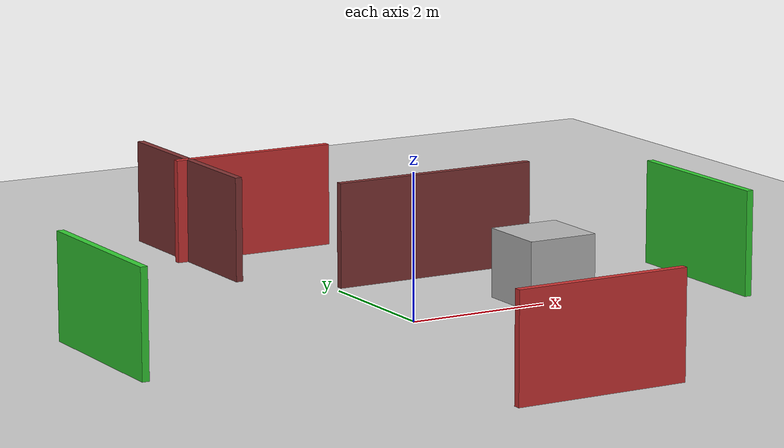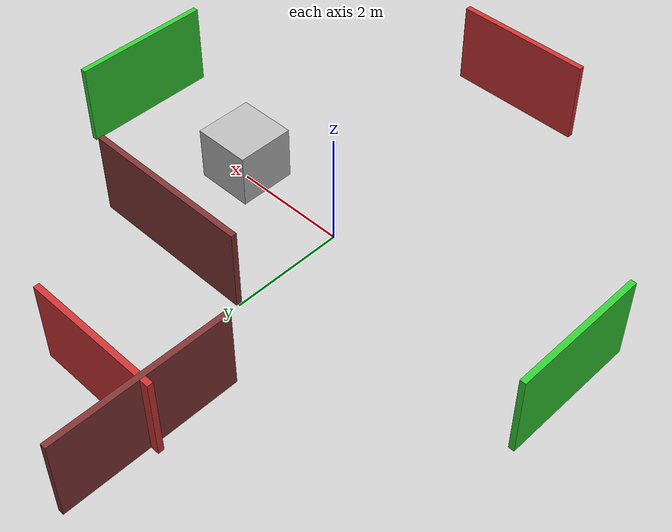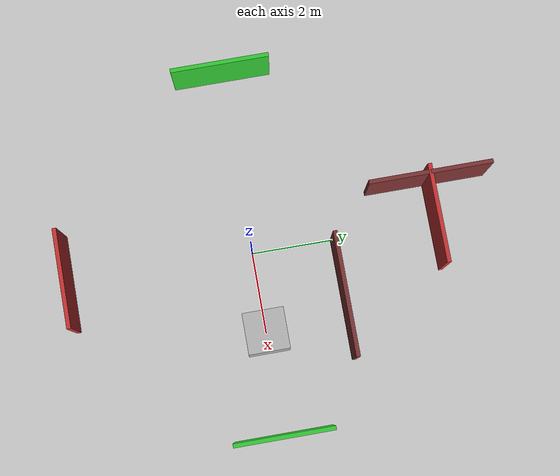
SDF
<?xml version="1.0"?>
<sdf version="1.5">
  <world name="default">
    <!-- A global light source -->
    <gravity>0 0 -9.81</gravity>
    <surface>
      <friction>
         <ode>
            <mu>1.5</mu>
            <mu2>1.5</mu2>
          </ode>
      </friction>
    </surface>
    <!-- Light -->
    <light name="sun" type="directional">
      <cast_shadows>true</cast_shadows>
      <pose>0 0 20 0 0 0</pose>
      <diffuse>1 1 1 1</diffuse>
      <direction>-0.5 0.5 -1</direction>
    </light>

    <physics name="1ms" type="ignored">
      <max_step_size>0.001</max_step_size>
      <real_time_factor>1.0</real_time_factor>
    </physics>
    <plugin filename="gz-sim-physics-system" name="gz::sim::systems::Physics">
    </plugin>
    <plugin filename="gz-sim-sensors-system" name="gz::sim::systems::Sensors">
      <render_engine>ogre2</render_engine>
    </plugin>
    <plugin filename="gz-sim-user-commands-system" name="gz::sim::systems::UserCommands">
    </plugin>
    <plugin filename="gz-sim-scene-broadcaster-system" name="gz::sim::systems::SceneBroadcaster">
    </plugin>

    <gui fullscreen="0">

      <!-- 3D scene -->
      <plugin filename="MinimalScene" name="3D View">
        <gz-gui>
          <title>3D View</title>
          <property type="bool" key="showTitleBar">false</property>
          <property type="string" key="state">docked</property>
        </gz-gui>

        <engine>ogre2</engine>
        <scene>scene</scene>
        <ambient_light>0.4 0.4 0.4</ambient_light>
        <background_color>0.8 0.8 0.8</background_color>
        <camera_pose>-6 0 6 0 0.5 0</camera_pose>
      </plugin>

      <!-- Plugins that add functionality to the scene -->
      <plugin filename="EntityContextMenuPlugin" name="Entity context menu">
        <gz-gui>
          <property key="state" type="string">floating</property>
          <property key="width" type="double">5</property>
          <property key="height" type="double">5</property>
          <property key="showTitleBar" type="bool">false</property>
        </gz-gui>
      </plugin>
      <plugin filename="GzSceneManager" name="Scene Manager">
        <gz-gui>
          <property key="resizable" type="bool">false</property>
          <property key="width" type="double">5</property>
          <property key="height" type="double">5</property>
          <property key="state" type="string">floating</property>
          <property key="showTitleBar" type="bool">false</property>
        </gz-gui>
      </plugin>
      <plugin filename="InteractiveViewControl" name="Interactive view control">
        <gz-gui>
          <property key="resizable" type="bool">false</property>
          <property key="width" type="double">5</property>
          <property key="height" type="double">5</property>
          <property key="state" type="string">floating</property>
          <property key="showTitleBar" type="bool">false</property>
        </gz-gui>
      </plugin>
      <plugin filename="CameraTracking" name="Camera Tracking">
        <gz-gui>
          <property key="resizable" type="bool">false</property>
          <property key="width" type="double">5</property>
          <property key="height" type="double">5</property>
          <property key="state" type="string">floating</property>
          <property key="showTitleBar" type="bool">false</property>
        </gz-gui>
      </plugin>
      <!-- World control -->
      <plugin filename="WorldControl" name="World control">
        <gz-gui>
          <title>World control</title>
          <property type="bool" key="showTitleBar">false</property>
          <property type="bool" key="resizable">false</property>
          <property type="double" key="height">72</property>
          <property type="double" key="z">1</property>

          <property type="string" key="state">floating</property>
          <anchors target="3D View">
            <line own="left" target="left" />
            <line own="bottom" target="bottom" />
          </anchors>
        </gz-gui>

        <play_pause>true</play_pause>
        <step>true</step>
        <start_paused>true</start_paused>
        <use_event>true</use_event>

      </plugin>

      <!-- World statistics -->
      <plugin filename="WorldStats" name="World stats">
        <gz-gui>
          <title>World stats</title>
          <property type="bool" key="showTitleBar">false</property>
          <property type="bool" key="resizable">false</property>
          <property type="double" key="height">110</property>
          <property type="double" key="width">290</property>
          <property type="double" key="z">1</property>

          <property type="string" key="state">floating</property>
          <anchors target="3D View">
            <line own="right" target="right" />
            <line own="bottom" target="bottom" />
          </anchors>
        </gz-gui>

        <sim_time>true</sim_time>
        <real_time>true</real_time>
        <real_time_factor>true</real_time_factor>
        <iterations>true</iterations>
      </plugin>

      <plugin filename="ImageDisplay" name="Image Display">
        <gz-gui>
          <property key="state" type="string">docked</property>
        </gz-gui>
        <topic>camera</topic>
      </plugin>

      <!-- Inspector -->
      <plugin filename="ComponentInspector" name="Component inspector">
        <gz-gui>
          <property type="string" key="state">docked</property>
        </gz-gui>
      </plugin>

      <!-- Entity tree -->
      <plugin filename="EntityTree" name="Entity tree">
        <gz-gui>
          <property type="string" key="state">docked</property>
        </gz-gui>
      </plugin>
    </gui>

    <!-- Large Ground -->
    <model name="ground">
      <static>true</static>
      <pose>0 0 0 0 0 0</pose>
      <link name="ground_link">
        <collision name="collision">
          <geometry>
            <box>
              <size>150 150 0.1</size>
            </box>
          </geometry>
        </collision>
        <visual name="visual">
          <geometry>
            <box>
              <size>150 150 0.1</size>
            </box>
          </geometry>
          <material>
            <diffuse>0.8 0.8 0.8 1</diffuse>
          </material>
        </visual>
      </link>
    </model>

    <visual>
      <origin xyz="0 0 0" rpy="0 0 0"/>
      <geometry>
        <mesh filename="package://first_robot/meshes/spiderman.obj" scale="1 1 1"/>
      </geometry>
    </visual>

    <collision>
      <origin xyz="0 0 0" rpy="0 0 0"/>
      <geometry>
        <!-- optional, can use same mesh or box -->
        <mesh filename="package://first_robot/meshes/spiderman.obj" scale="1 1 1"/>
      </geometry>
    </collision>

    <model name="box">
      <pose>2 0 0.5 0 0 0</pose>
      <link name="link">
        <collision name="collision">
          <geometry>
            <box>
              <size>1 1 1</size>
            </box>
          </geometry>
        </collision>
        <visual name="visual">
          <geometry>
            <box>
              <size>1 1 1</size>
            </box>
          </geometry>
        </visual>
      </link>
    </model>

    <!-- Tường phía Bắc (trên) -->
    <model name="wall_north">
      <static>true</static>
      <pose>0 4.5 0.75 0 0 0</pose>      <!-- Cách tâm 4.5m theo trục Y -->
      <link name="link">
        <collision name="collision">
          <geometry>
            <box>
              <size>2.4 0.1 1.5</size>
            </box>            <!-- Tường ngắn lại để chừa hai góc -->
          </geometry>
        </collision>
        <visual name="visual">
          <geometry>
            <box>
              <size>2.4 0.1 1.5</size>
            </box>
          </geometry>
          <material>
            <diffuse>0.8 0.2 0.2 1</diffuse>
          </material>
        </visual>
      </link>
    </model>

    <!-- Tường phía Nam (dưới) -->
    <model name="wall_south">
      <static>true</static>
      <pose>0 -4.5 0.75 0 0 0</pose>
      <link name="link">
        <collision name="collision">
          <geometry>
            <box>
              <size>2.4 0.1 1.5</size>
            </box>
          </geometry>
        </collision>
        <visual name="visual">
          <geometry>
            <box>
              <size>2.4 0.1 1.5</size>
            </box>
          </geometry>
          <material>
            <diffuse>0.8 0.2 0.2 1</diffuse>
          </material>
        </visual>
      </link>
    </model>

    <!-- Tường phía Tây (trái) -->
    <model name="wall_west">
      <static>true</static>
      <pose>-4.5 0 0.75 0 0 1.5708</pose>      <!-- Xoay ngang -->
      <link name="link">
        <collision name="collision">
          <geometry>
            <box>
              <size>2.4 0.1 1.5</size>
            </box>
          </geometry>
        </collision>
        <visual name="visual">
          <geometry>
            <box>
              <size>2.4 0.1 1.5</size>
            </box>
          </geometry>
          <material>
            <diffuse>0.2 0.8 0.2 1</diffuse>
          </material>
        </visual>
      </link>
    </model>

    <!-- Tường phía Đông (phải) -->
    <model name="wall_east">
      <static>true</static>
      <pose>4.5 0 0.75 0 0 1.5708</pose>      <!-- Xoay ngang -->
      <link name="link">
        <collision name="collision">
          <geometry>
            <box>
              <size>2.4 0.1 1.5</size>
            </box>
          </geometry>
        </collision>
        <visual name="visual">
          <geometry>
            <box>
              <size>2.4 0.1 1.5</size>
            </box>
          </geometry>
          <material>
            <diffuse>0.2 0.8 0.2 1</diffuse>
          </material>
        </visual>
      </link>
    </model>

    <model name="wall_w_0">
      <static>true</static>
      <pose>-1.0 4.5 0.75 0 0 1.5708</pose>
      <link name="link">
        <collision name="collision">
          <geometry>
            <box>
              <size>3 0.1 1.5</size>
            </box>
          </geometry>
        </collision>
        <visual name="visual">
          <geometry>
            <box>
              <size>3 0.1 1.5</size>
            </box>
          </geometry>
          <material>
            <diffuse>0.5 0.2 0.2 1</diffuse>
          </material>
        </visual>
      </link>
    </model>

    <model name="wall_w_1">
      <static>true</static>
      <pose>1.5 2.0 0.75 0 0 0</pose>
      <link name="link">
        <collision name="collision">
          <geometry>
            <box>
              <size>3 0.1 1.5</size>
            </box>
          </geometry>
        </collision>
        <visual name="visual">
          <geometry>
            <box>
              <size>3 0.1 1.5</size>
            </box>
          </geometry>
          <material>
            <diffuse>0.5 0.2 0.2 1</diffuse>
          </material>
        </visual>
      </link>
    </model>

  </world>
</sdf>
